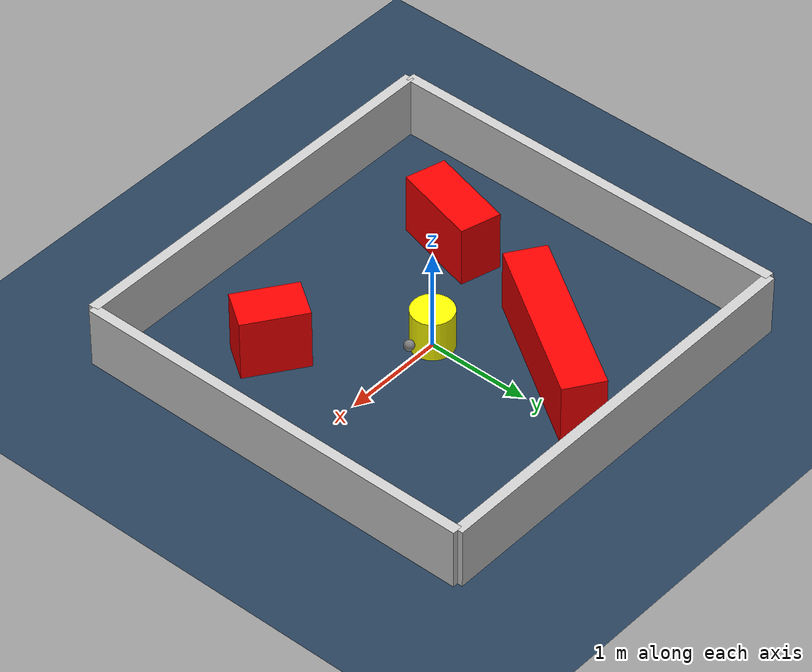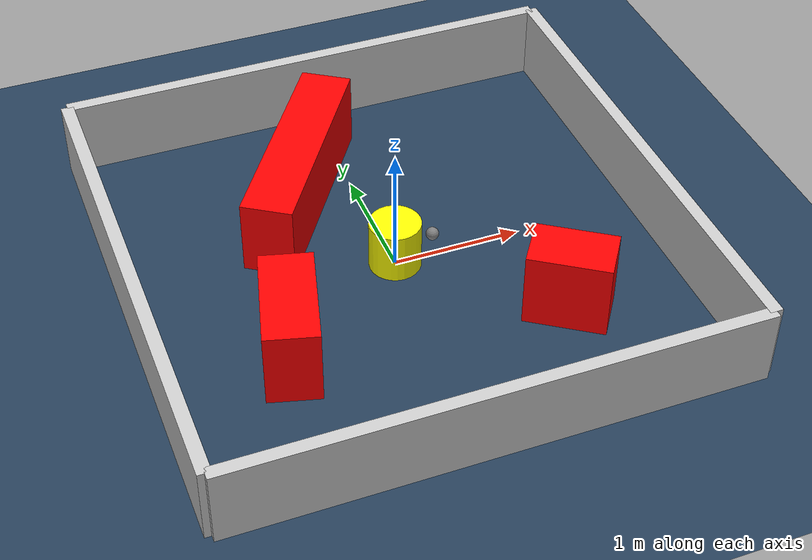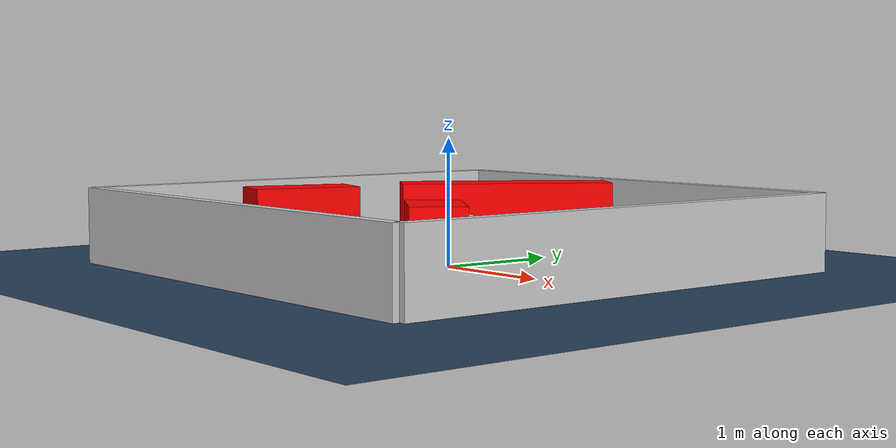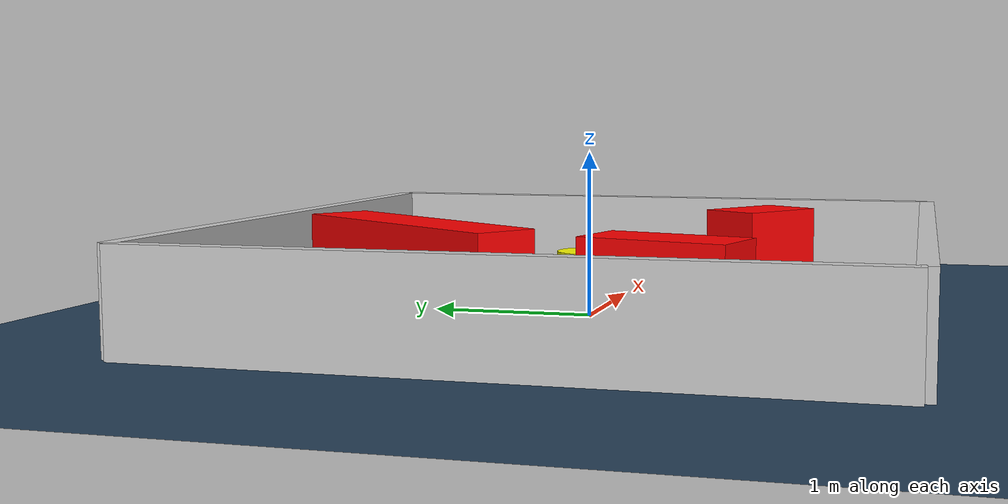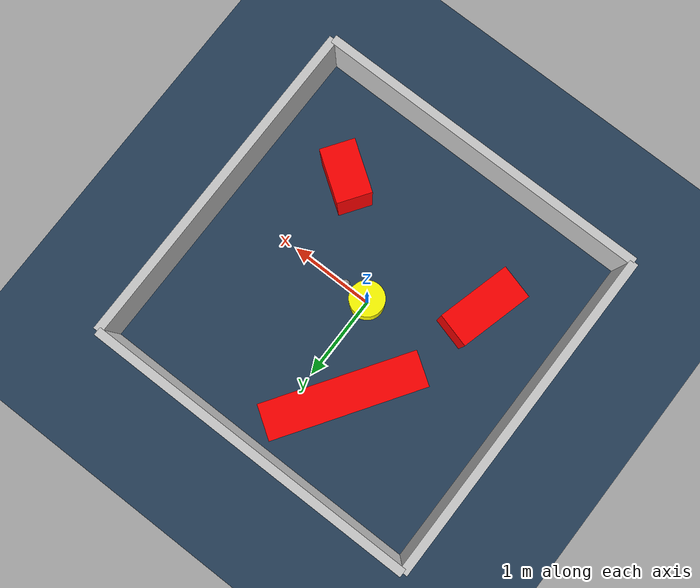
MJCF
<?xml version="1.0" ?>
<mujoco model="generated_environment">
  <option timestep="0.01" integrator="RK4" cone="elliptic"/>
  <default>
    <geom density="1"/>
  </default>
  <asset>
    <texture builtin="gradient" height="3072" rgb1="0.3 0.5 0.7" rgb2="0 0 0" type="skybox" width="512"/>
    <texture builtin="checker" height="300" mark="edge" markrgb="0.8 0.8 0.8" name="groundplane" rgb1="0.2 0.3 0.4" rgb2="0.1 0.2 0.3" type="2d" width="300"/>
    <material name="groundplane" reflectance="0.2" texrepeat="5 5" texture="groundplane" texuniform="true"/>
    <material name="robot" rgba="0.0 1.0 0.0 1"/>
  </asset>
  <worldbody>
    <light dir="0 0 -1" directional="true" pos="0 0 1.5"/>
    <geom condim="4" friction="1.0 0.005 0.001" material="groundplane" name="floor" size="0 0 0.05" type="plane"/>
    <body name="walls">
      <geom name="wall_1" condim="4" pos="-2.0 0.0 0.3" rgba="0.800000011920929 0.800000011920929 0.800000011920929 1.0" size="0.05 2.0 0.3" type="box"/>
      <geom name="wall_2" condim="4" pos="2.0 0.0 0.3" rgba="0.800000011920929 0.800000011920929 0.800000011920929 1.0" size="0.05 2.0 0.3" type="box"/>
      <geom name="wall_3" condim="4" pos="0.0 -2.0 0.3" rgba="0.800000011920929 0.800000011920929 0.800000011920929 1.0" size="2.0 0.05 0.3" type="box"/>
      <geom name="wall_4" condim="4" pos="0.0 2.0 0.3" rgba="0.800000011920929 0.800000011920929 0.800000011920929 1.0" size="2.0 0.05 0.3" type="box"/>
    </body>
    <body name="robot">
      <joint name="joint_x" type="slide" pos="0 0 0" axis="1 0 0"/>
      <joint name="joint_y" type="slide" pos="0 0 0" axis="0 1 0"/>
      <geom name="robot" type="sphere" pos="0.3 0.0 0.2" size="0.05" mass="5." friction="1.0 0.005 0.0001" condim="4" rgba="0.5 0.5 0.5 1.0"/>
      <site name="sensor_ball"/>
    </body>
    <body name="obstacle_movable_1">
      <geom name="obstacle_movable_1" condim="4" pos="0.0 0.0 0.2" euler="0 0 0.0" friction="1.0 0.005 0.001" rgba="1.0 1.0 0.0 1.0" size="0.2 0.2 0.0" type="cylinder" mass="0.1"/>
      <joint type="free"/>
    </body>
    <body name="obstacle_2_static">
      <geom name="obstacle_2_static" condim="4" pos="-0.4331291891000233 0.962583425379109 0.3" euler="0 0 56.34774093131546" friction="1.0 0.005 0.001" rgba="1 0 0 1" size="0.8704639133180816 0.2 0.3" type="box"/>
    </body>
    <body name="obstacle_3_static">
      <geom name="obstacle_3_static" condim="4" pos="0.9994631217959897 -0.9251651327330108 0.3" euler="0 0 145.471493086517" friction="1.0 0.005 0.001" rgba="1 0 0 1" size="0.3096199325738601 0.2 0.3" type="box"/>
    </body>
    <body name="obstacle_4_static">
      <geom name="obstacle_4_static" condim="4" pos="-1.0368673458133189 -0.6727498492201778 0.3" euler="0 0 74.86136399808618" friction="1.0 0.005 0.001" rgba="1 0 0 1" size="0.425576944944823 0.2 0.3" type="box"/>
    </body>
  </worldbody>
  <actuator>
    <motor name="actuator_x" joint="joint_x" gear="1" ctrlrange="-1 1"/>
    <motor name="actuator_y" joint="joint_y" gear="1" ctrlrange="-1 1"/>
  </actuator>
</mujoco>
